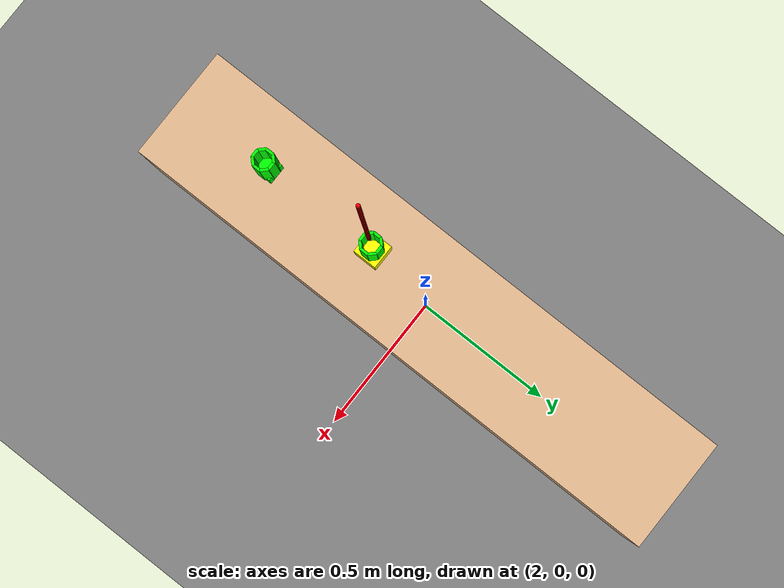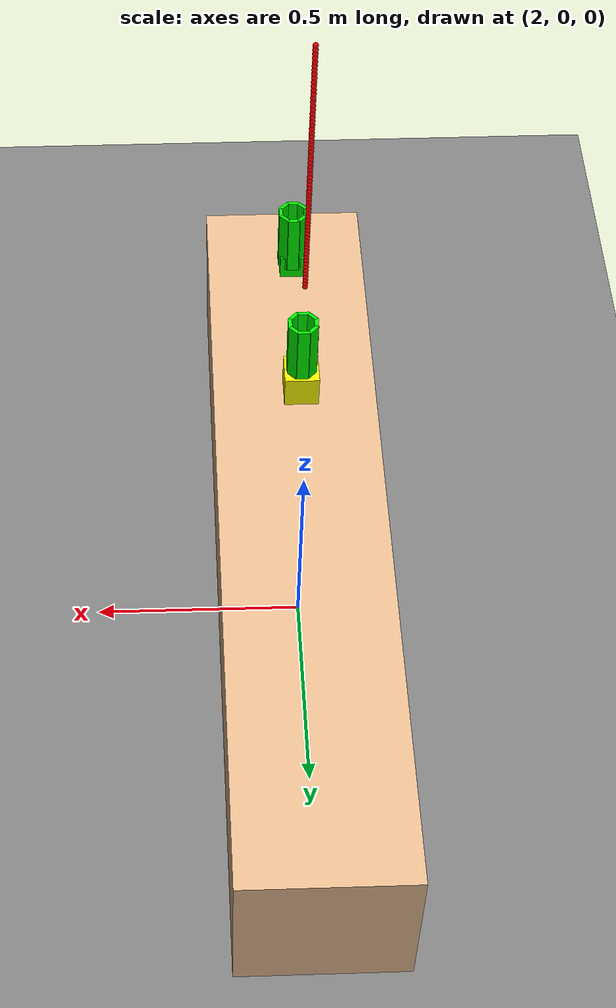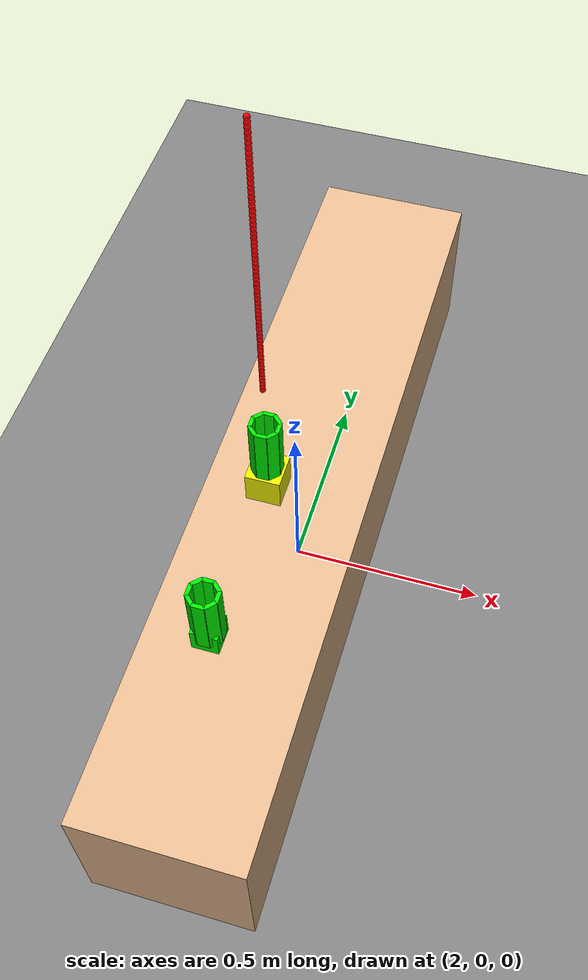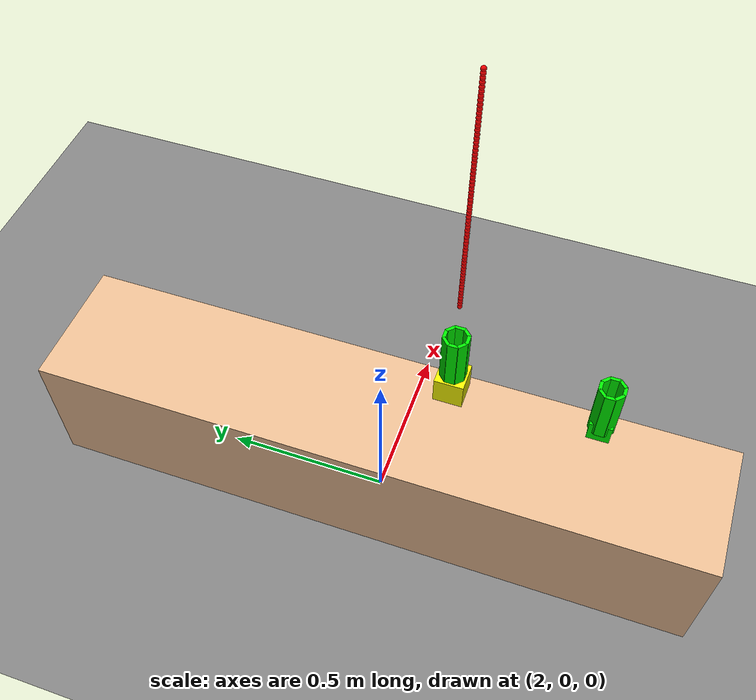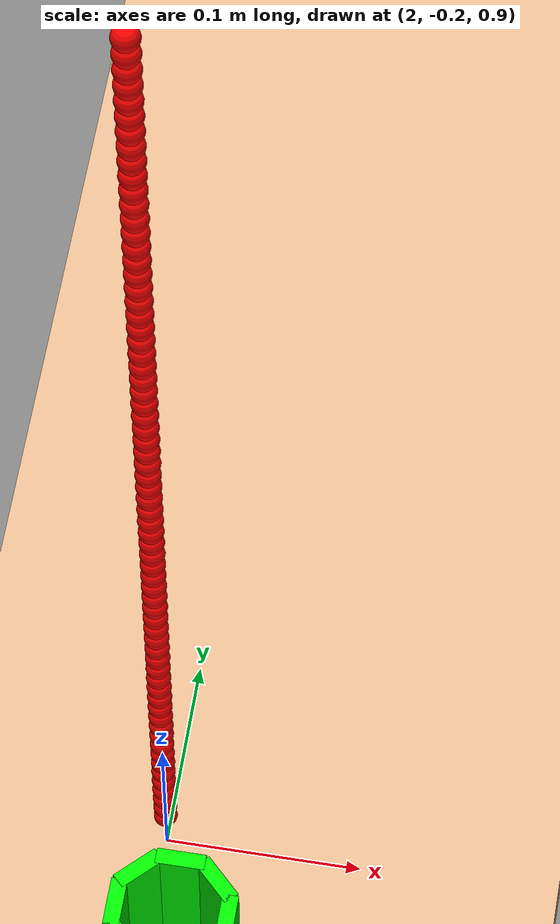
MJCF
<mujoco>
	<compiler angle="radian"/>
	<option timestep="0.002" integrator="RK4" solver="CG" gravity="0 0 -9.81">
		<flag contact="enable" multiccd="enable"/>
	</option>

  <default>
        <geom condim="4" solimp="0.99 0.99 0" solref="0.01 1" friction="1 0.06 0.001"/>
    </default>

	<asset>
    <texture type="skybox" builtin="gradient" rgb1="1 1 1" rgb2=".6 .8 1" width="256" height="256"/>
		<texture name="grid" type="2d" builtin="checker" width="112" height="112" rgb1="0 0 0" rgb2="1 1 1" />
		<material name="grid" texture="grid" texrepeat="1 1" texuniform="true" reflectance=".2" />
	</asset>

	<worldbody>
		<geom name="floor" size="0 0 .05" type="plane" material="grid" condim="3" />
		<light diffuse="1 1 1" pos="0 0 5" dir="0 0 -1" />
		<light diffuse="1 1 1" pos="2 -1 5" dir="0 0 -1" />
		<light diffuse="1 1 1" pos="1 1 5" dir="0 0 -1" />
	</worldbody>

	<worldbody>
		<body name="table" pos="2 0 0.2">
			<geom name="table_geom" type="box" size="0.2 1 0.2" rgba=".89 0.72 .56 1"/>
		</body>

		<body name="src_cup" pos="2 -0.6 0.7">
			<freejoint name="src_cup_joint"/>
			<inertial pos="0.0 0.0 0.0" mass="0.01" diaginertia="0.0008 0.0008 0.00015" />
			<geom type="box" pos="0 0 -0.076" size="0.03 0.03 0.03" rgba="0 1 0 1"/>
			<geom type="box" pos="0.03 0 0" euler="0 0 0" size="0.0044 0.013420519420888278 0.08" rgba="0 1 0 1" />
			<geom type="box" pos="0.021213 0.021213 0" euler="0 0 0.7853981633974483" size="0.0044 0.013420519420888278 0.08" rgba="0 1 0 1" />
			<geom type="box" pos="0 0.03 0" euler="0 0 1.5707963267948966" size="0.0044 0.013420519420888278 0.08" rgba="0 1 0 1" />
			<geom type="box" pos="-0.021213 0.021213 0" euler="0 0 2.356194490192345" size="0.0044 0.013420519420888278 0.08" rgba="0 1 0 1" />
			<geom type="box" pos="-0.03 0 0" euler="0 0 3.141592653589793" size="0.0044 0.013420519420888278 0.08" rgba="0 1 0 1" />
			<geom type="box" pos="-0.021213 -0.021213 0" euler="0 0 -2.356194490192345" size="0.0044 0.013420519420888278 0.08" rgba="0 1 0 1" />
			<geom type="box" pos="0 -0.03 0" euler="0 0 -1.5707963267948966" size="0.0044 0.013420519420888278 0.08" rgba="0 1 0 1" />
			<geom type="box" pos="0.021213 -0.021213 0" euler="0 0 -0.7853981633974483" size="0.0044 0.013420519420888278 0.08" rgba="0 1 0 1" />
		</body>
		<body name="dest_cup" pos="2 -0.2 0.7">
			<freejoint name="dest_cup_joint"/>
     		<inertial pos="0.0 0.0 0.0" mass="0.01" diaginertia="0.0008 0.0008 0.00015" />
			<geom name="bottom_cylinder" type="cylinder" pos="0 0 -0.076" size="0.036 0.032" rgba="0 1 0 1"/>
			<geom type="box" pos="0 0 -0.075" size="0.04 0.04 0.04" rgba="1 1 0 1" group="2" />
			<geom type="box" pos="0.03 0 0.035" euler="0 0 0" size="0.0044 0.013420519420888278 0.08" rgba="0 1 0 1" />
			<geom type="box" pos="0.021213 0.021213 0.035" euler="0 0 0.7853981633974483" size="0.0044 0.013420519420888278 0.08" rgba="0 1 0 1" />
			<geom type="box" pos="0 0.03 0.035" euler="0 0 1.5707963267948966" size="0.0044 0.013420519420888278 0.08" rgba="0 1 0 1" />
			<geom type="box" pos="-0.021213 0.021213 0.035" euler="0 0 2.356194490192345" size="0.0044 0.013420519420888278 0.08" rgba="0 1 0 1" />
			<geom type="box" pos="-0.03 0 0.035" euler="0 0 3.141592653589793" size="0.0044 0.013420519420888278 0.08" rgba="0 1 0 1" />
			<geom type="box" pos="-0.021213 -0.021213 0.035" euler="0 0 -2.356194490192345" size="0.0044 0.013420519420888278 0.08" rgba="0 1 0 1" />
			<geom type="box" pos="0 -0.03 0.035" euler="0 0 -1.5707963267948966" size="0.0044 0.013420519420888278 0.08" rgba="0 1 0 1" />
			<geom type="box" pos="0.021213 -0.021213 0.035" euler="0 0 -0.7853981633974483" size="0.0044 0.013420519420888278 0.08" rgba="0 1 0 1" />
		</body>
	</worldbody>

	<worldbody>

		<body name="sync_ball13" pos="2 -0.2 0.93">
			<freejoint/> <inertial pos="0.0 0.0 0.0" mass="0.0001" diaginertia="0.000000001 0.000000001 0.000000001" />
			<geom type="sphere" size="0.006" rgba="1 0 0 1"/>
		</body>
		<body name="sync_ball14" pos="2 -0.2 0.9400000000000001">
			<freejoint/> <inertial pos="0.0 0.0 0.0" mass="0.0001" diaginertia="0.000000001 0.000000001 0.000000001" />
			<geom type="sphere" size="0.006" rgba="1 0 0 1"/>
		</body>
		<body name="sync_ball15" pos="2 -0.2 0.9500000000000001">
			<freejoint/> <inertial pos="0.0 0.0 0.0" mass="0.0001" diaginertia="0.000000001 0.000000001 0.000000001" />
			<geom type="sphere" size="0.006" rgba="1 0 0 1"/>
		</body>
		<body name="sync_ball16" pos="2 -0.2 0.9600000000000001">
			<freejoint/> <inertial pos="0.0 0.0 0.0" mass="0.0001" diaginertia="0.000000001 0.000000001 0.000000001" />
			<geom type="sphere" size="0.006" rgba="1 0 0 1"/>
		</body>
		<body name="sync_ball17" pos="2 -0.2 0.9700000000000001">
			<freejoint/> <inertial pos="0.0 0.0 0.0" mass="0.0001" diaginertia="0.000000001 0.000000001 0.000000001" />
			<geom type="sphere" size="0.006" rgba="1 0 0 1"/>
		</body>
		<body name="sync_ball18" pos="2 -0.2 0.98">
			<freejoint/> <inertial pos="0.0 0.0 0.0" mass="0.0001" diaginertia="0.000000001 0.000000001 0.000000001" />
			<geom type="sphere" size="0.006" rgba="1 0 0 1"/>
		</body>
		<body name="sync_ball19" pos="2 -0.2 0.99">
			<freejoint/> <inertial pos="0.0 0.0 0.0" mass="0.0001" diaginertia="0.000000001 0.000000001 0.000000001" />
			<geom type="sphere" size="0.006" rgba="1 0 0 1"/>
		</body>
		<body name="sync_ball20" pos="2 -0.2 1.0">
			<freejoint/> <inertial pos="0.0 0.0 0.0" mass="0.0001" diaginertia="0.000000001 0.000000001 0.000000001" />
			<geom type="sphere" size="0.006" rgba="1 0 0 1"/>
		</body>
		<body name="sync_ball21" pos="2 -0.2 1.01">
			<freejoint/> <inertial pos="0.0 0.0 0.0" mass="0.0001" diaginertia="0.000000001 0.000000001 0.000000001" />
			<geom type="sphere" size="0.006" rgba="1 0 0 1"/>
		</body>
		<body name="sync_ball22" pos="2 -0.2 1.02">
			<freejoint/> <inertial pos="0.0 0.0 0.0" mass="0.0001" diaginertia="0.000000001 0.000000001 0.000000001" />
			<geom type="sphere" size="0.006" rgba="1 0 0 1"/>
		</body>
		<body name="sync_ball23" pos="2 -0.2 1.03">
			<freejoint/> <inertial pos="0.0 0.0 0.0" mass="0.0001" diaginertia="0.000000001 0.000000001 0.000000001" />
			<geom type="sphere" size="0.006" rgba="1 0 0 1"/>
		</body>
		<body name="sync_ball24" pos="2 -0.2 1.04">
			<freejoint/> <inertial pos="0.0 0.0 0.0" mass="0.0001" diaginertia="0.000000001 0.000000001 0.000000001" />
			<geom type="sphere" size="0.006" rgba="1 0 0 1"/>
		</body>
		<body name="sync_ball25" pos="2 -0.2 1.05">
			<freejoint/> <inertial pos="0.0 0.0 0.0" mass="0.0001" diaginertia="0.000000001 0.000000001 0.000000001" />
			<geom type="sphere" size="0.006" rgba="1 0 0 1"/>
		</body>
		<body name="sync_ball26" pos="2 -0.2 1.06">
			<freejoint/> <inertial pos="0.0 0.0 0.0" mass="0.0001" diaginertia="0.000000001 0.000000001 0.000000001" />
			<geom type="sphere" size="0.006" rgba="1 0 0 1"/>
		</body>
		<body name="sync_ball27" pos="2 -0.2 1.07">
			<freejoint/> <inertial pos="0.0 0.0 0.0" mass="0.0001" diaginertia="0.000000001 0.000000001 0.000000001" />
			<geom type="sphere" size="0.006" rgba="1 0 0 1"/>
		</body>
		<body name="sync_ball28" pos="2 -0.2 1.08">
			<freejoint/> <inertial pos="0.0 0.0 0.0" mass="0.0001" diaginertia="0.000000001 0.000000001 0.000000001" />
			<geom type="sphere" size="0.006" rgba="1 0 0 1"/>
		</body>
		<body name="sync_ball29" pos="2 -0.2 1.09">
			<freejoint/> <inertial pos="0.0 0.0 0.0" mass="0.0001" diaginertia="0.000000001 0.000000001 0.000000001" />
			<geom type="sphere" size="0.006" rgba="1 0 0 1"/>
		</body>
		<body name="sync_ball30" pos="2 -0.2 1.1">
			<freejoint/> <inertial pos="0.0 0.0 0.0" mass="0.0001" diaginertia="0.000000001 0.000000001 0.000000001" />
			<geom type="sphere" size="0.006" rgba="1 0 0 1"/>
		</body>
		<body name="sync_ball31" pos="2 -0.2 1.11">
			<freejoint/> <inertial pos="0.0 0.0 0.0" mass="0.0001" diaginertia="0.000000001 0.000000001 0.000000001" />
			<geom type="sphere" size="0.006" rgba="1 0 0 1"/>
		</body>
		<body name="sync_ball32" pos="2 -0.2 1.12">
			<freejoint/> <inertial pos="0.0 0.0 0.0" mass="0.0001" diaginertia="0.000000001 0.000000001 0.000000001" />
			<geom type="sphere" size="0.006" rgba="1 0 0 1"/>
		</body>
		<body name="sync_ball33" pos="2 -0.2 1.1300000000000001">
			<freejoint/> <inertial pos="0.0 0.0 0.0" mass="0.0001" diaginertia="0.000000001 0.000000001 0.000000001" />
			<geom type="sphere" size="0.006" rgba="1 0 0 1"/>
		</body>
		<body name="sync_ball34" pos="2 -0.2 1.1400000000000001">
			<freejoint/> <inertial pos="0.0 0.0 0.0" mass="0.0001" diaginertia="0.000000001 0.000000001 0.000000001" />
			<geom type="sphere" size="0.006" rgba="1 0 0 1"/>
		</body>
		<body name="sync_ball35" pos="2 -0.2 1.1500000000000001">
			<freejoint/> <inertial pos="0.0 0.0 0.0" mass="0.0001" diaginertia="0.000000001 0.000000001 0.000000001" />
			<geom type="sphere" size="0.006" rgba="1 0 0 1"/>
		</body>
		<body name="sync_ball36" pos="2 -0.2 1.1600000000000001">
			<freejoint/> <inertial pos="0.0 0.0 0.0" mass="0.0001" diaginertia="0.000000001 0.000000001 0.000000001" />
			<geom type="sphere" size="0.006" rgba="1 0 0 1"/>
		</body>
		<body name="sync_ball37" pos="2 -0.2 1.17">
			<freejoint/> <inertial pos="0.0 0.0 0.0" mass="0.0001" diaginertia="0.000000001 0.000000001 0.000000001" />
			<geom type="sphere" size="0.006" rgba="1 0 0 1"/>
		</body>
		<body name="sync_ball38" pos="2 -0.2 1.1800000000000002">
			<freejoint/> <inertial pos="0.0 0.0 0.0" mass="0.0001" diaginertia="0.000000001 0.000000001 0.000000001" />
			<geom type="sphere" size="0.006" rgba="1 0 0 1"/>
		</body>
		<body name="sync_ball39" pos="2 -0.2 1.19">
			<freejoint/> <inertial pos="0.0 0.0 0.0" mass="0.0001" diaginertia="0.000000001 0.000000001 0.000000001" />
			<geom type="sphere" size="0.006" rgba="1 0 0 1"/>
		</body>
		<body name="sync_ball40" pos="2 -0.2 1.2000000000000002">
			<freejoint/> <inertial pos="0.0 0.0 0.0" mass="0.0001" diaginertia="0.000000001 0.000000001 0.000000001" />
			<geom type="sphere" size="0.006" rgba="1 0 0 1"/>
		</body>
		<body name="sync_ball41" pos="2 -0.2 1.21">
			<freejoint/> <inertial pos="0.0 0.0 0.0" mass="0.0001" diaginertia="0.000000001 0.000000001 0.000000001" />
			<geom type="sphere" size="0.006" rgba="1 0 0 1"/>
		</body>
		<body name="sync_ball42" pos="2 -0.2 1.22">
			<freejoint/> <inertial pos="0.0 0.0 0.0" mass="0.0001" diaginertia="0.000000001 0.000000001 0.000000001" />
			<geom type="sphere" size="0.006" rgba="1 0 0 1"/>
		</body>
		<body name="sync_ball43" pos="2 -0.2 1.23">
			<freejoint/> <inertial pos="0.0 0.0 0.0" mass="0.0001" diaginertia="0.000000001 0.000000001 0.000000001" />
			<geom type="sphere" size="0.006" rgba="1 0 0 1"/>
		</body>
		<body name="sync_ball44" pos="2 -0.2 1.24">
			<freejoint/> <inertial pos="0.0 0.0 0.0" mass="0.0001" diaginertia="0.000000001 0.000000001 0.000000001" />
			<geom type="sphere" size="0.006" rgba="1 0 0 1"/>
		</body>
		<body name="sync_ball45" pos="2 -0.2 1.25">
			<freejoint/> <inertial pos="0.0 0.0 0.0" mass="0.0001" diaginertia="0.000000001 0.000000001 0.000000001" />
			<geom type="sphere" size="0.006" rgba="1 0 0 1"/>
		</body>
		<body name="sync_ball46" pos="2 -0.2 1.26">
			<freejoint/> <inertial pos="0.0 0.0 0.0" mass="0.0001" diaginertia="0.000000001 0.000000001 0.000000001" />
			<geom type="sphere" size="0.006" rgba="1 0 0 1"/>
		</body>
		<body name="sync_ball47" pos="2 -0.2 1.27">
			<freejoint/> <inertial pos="0.0 0.0 0.0" mass="0.0001" diaginertia="0.000000001 0.000000001 0.000000001" />
			<geom type="sphere" size="0.006" rgba="1 0 0 1"/>
		</body>
		<body name="sync_ball48" pos="2 -0.2 1.28">
			<freejoint/> <inertial pos="0.0 0.0 0.0" mass="0.0001" diaginertia="0.000000001 0.000000001 0.000000001" />
			<geom type="sphere" size="0.006" rgba="1 0 0 1"/>
		</body>
		<body name="sync_ball49" pos="2 -0.2 1.29">
			<freejoint/> <inertial pos="0.0 0.0 0.0" mass="0.0001" diaginertia="0.000000001 0.000000001 0.000000001" />
			<geom type="sphere" size="0.006" rgba="1 0 0 1"/>
		</body>
		<body name="sync_ball50" pos="2 -0.2 1.3">
			<freejoint/> <inertial pos="0.0 0.0 0.0" mass="0.0001" diaginertia="0.000000001 0.000000001 0.000000001" />
			<geom type="sphere" size="0.006" rgba="1 0 0 1"/>
		</body>
		<body name="sync_ball51" pos="2 -0.2 1.31">
			<freejoint/> <inertial pos="0.0 0.0 0.0" mass="0.0001" diaginertia="0.000000001 0.000000001 0.000000001" />
			<geom type="sphere" size="0.006" rgba="1 0 0 1"/>
		</body>
		<body name="sync_ball52" pos="2 -0.2 1.32">
			<freejoint/> <inertial pos="0.0 0.0 0.0" mass="0.0001" diaginertia="0.000000001 0.000000001 0.000000001" />
			<geom type="sphere" size="0.006" rgba="1 0 0 1"/>
		</body>
		<body name="sync_ball53" pos="2 -0.2 1.33">
			<freejoint/> <inertial pos="0.0 0.0 0.0" mass="0.0001" diaginertia="0.000000001 0.000000001 0.000000001" />
			<geom type="sphere" size="0.006" rgba="1 0 0 1"/>
		</body>
		<body name="sync_ball54" pos="2 -0.2 1.34">
			<freejoint/> <inertial pos="0.0 0.0 0.0" mass="0.0001" diaginertia="0.000000001 0.000000001 0.000000001" />
			<geom type="sphere" size="0.006" rgba="1 0 0 1"/>
		</body>
		<body name="sync_ball55" pos="2 -0.2 1.35">
			<freejoint/> <inertial pos="0.0 0.0 0.0" mass="0.0001" diaginertia="0.000000001 0.000000001 0.000000001" />
			<geom type="sphere" size="0.006" rgba="1 0 0 1"/>
		</body>
		<body name="sync_ball56" pos="2 -0.2 1.36">
			<freejoint/> <inertial pos="0.0 0.0 0.0" mass="0.0001" diaginertia="0.000000001 0.000000001 0.000000001" />
			<geom type="sphere" size="0.006" rgba="1 0 0 1"/>
		</body>
		<body name="sync_ball57" pos="2 -0.2 1.37">
			<freejoint/> <inertial pos="0.0 0.0 0.0" mass="0.0001" diaginertia="0.000000001 0.000000001 0.000000001" />
			<geom type="sphere" size="0.006" rgba="1 0 0 1"/>
		</body>
		<body name="sync_ball58" pos="2 -0.2 1.38">
			<freejoint/> <inertial pos="0.0 0.0 0.0" mass="0.0001" diaginertia="0.000000001 0.000000001 0.000000001" />
			<geom type="sphere" size="0.006" rgba="1 0 0 1"/>
		</body>
		<body name="sync_ball59" pos="2 -0.2 1.3900000000000001">
			<freejoint/> <inertial pos="0.0 0.0 0.0" mass="0.0001" diaginertia="0.000000001 0.000000001 0.000000001" />
			<geom type="sphere" size="0.006" rgba="1 0 0 1"/>
		</body>
		<body name="sync_ball60" pos="2 -0.2 1.4">
			<freejoint/> <inertial pos="0.0 0.0 0.0" mass="0.0001" diaginertia="0.000000001 0.000000001 0.000000001" />
			<geom type="sphere" size="0.006" rgba="1 0 0 1"/>
		</body>
		<body name="sync_ball61" pos="2 -0.2 1.4100000000000001">
			<freejoint/> <inertial pos="0.0 0.0 0.0" mass="0.0001" diaginertia="0.000000001 0.000000001 0.000000001" />
			<geom type="sphere" size="0.006" rgba="1 0 0 1"/>
		</body>
		<body name="sync_ball62" pos="2 -0.2 1.42">
			<freejoint/> <inertial pos="0.0 0.0 0.0" mass="0.0001" diaginertia="0.000000001 0.000000001 0.000000001" />
			<geom type="sphere" size="0.006" rgba="1 0 0 1"/>
		</body>
		<body name="sync_ball63" pos="2 -0.2 1.4300000000000002">
			<freejoint/> <inertial pos="0.0 0.0 0.0" mass="0.0001" diaginertia="0.000000001 0.000000001 0.000000001" />
			<geom type="sphere" size="0.006" rgba="1 0 0 1"/>
		</body>
		<body name="sync_ball64" pos="2 -0.2 1.44">
			<freejoint/> <inertial pos="0.0 0.0 0.0" mass="0.0001" diaginertia="0.000000001 0.000000001 0.000000001" />
			<geom type="sphere" size="0.006" rgba="1 0 0 1"/>
		</body>
		<body name="sync_ball65" pos="2 -0.2 1.4500000000000002">
			<freejoint/> <inertial pos="0.0 0.0 0.0" mass="0.0001" diaginertia="0.000000001 0.000000001 0.000000001" />
			<geom type="sphere" size="0.006" rgba="1 0 0 1"/>
		</body>
		<body name="sync_ball66" pos="2 -0.2 1.46">
			<freejoint/> <inertial pos="0.0 0.0 0.0" mass="0.0001" diaginertia="0.000000001 0.000000001 0.000000001" />
			<geom type="sphere" size="0.006" rgba="1 0 0 1"/>
		</body>
		<body name="sync_ball67" pos="2 -0.2 1.4700000000000002">
			<freejoint/> <inertial pos="0.0 0.0 0.0" mass="0.0001" diaginertia="0.000000001 0.000000001 0.000000001" />
			<geom type="sphere" size="0.006" rgba="1 0 0 1"/>
		</body>
		<body name="sync_ball68" pos="2 -0.2 1.48">
			<freejoint/> <inertial pos="0.0 0.0 0.0" mass="0.0001" diaginertia="0.000000001 0.000000001 0.000000001" />
			<geom type="sphere" size="0.006" rgba="1 0 0 1"/>
		</body>
		<body name="sync_ball69" pos="2 -0.2 1.4900000000000002">
			<freejoint/> <inertial pos="0.0 0.0 0.0" mass="0.0001" diaginertia="0.000000001 0.000000001 0.000000001" />
			<geom type="sphere" size="0.006" rgba="1 0 0 1"/>
		</body>
		<body name="sync_ball70" pos="2 -0.2 1.5">
			<freejoint/> <inertial pos="0.0 0.0 0.0" mass="0.0001" diaginertia="0.000000001 0.000000001 0.000000001" />
			<geom type="sphere" size="0.006" rgba="1 0 0 1"/>
		</body>
		<body name="sync_ball71" pos="2 -0.2 1.51">
			<freejoint/> <inertial pos="0.0 0.0 0.0" mass="0.0001" diaginertia="0.000000001 0.000000001 0.000000001" />
			<geom type="sphere" size="0.006" rgba="1 0 0 1"/>
		</body>
		<body name="sync_ball72" pos="2 -0.2 1.52">
			<freejoint/> <inertial pos="0.0 0.0 0.0" mass="0.0001" diaginertia="0.000000001 0.000000001 0.000000001" />
			<geom type="sphere" size="0.006" rgba="1 0 0 1"/>
		</body>
		<body name="sync_ball73" pos="2 -0.2 1.53">
			<freejoint/> <inertial pos="0.0 0.0 0.0" mass="0.0001" diaginertia="0.000000001 0.000000001 0.000000001" />
			<geom type="sphere" size="0.006" rgba="1 0 0 1"/>
		</body>
		<body name="sync_ball74" pos="2 -0.2 1.54">
			<freejoint/> <inertial pos="0.0 0.0 0.0" mass="0.0001" diaginertia="0.000000001 0.000000001 0.000000001" />
			<geom type="sphere" size="0.006" rgba="1 0 0 1"/>
		</body>
		<body name="sync_ball75" pos="2 -0.2 1.55">
			<freejoint/> <inertial pos="0.0 0.0 0.0" mass="0.0001" diaginertia="0.000000001 0.000000001 0.000000001" />
			<geom type="sphere" size="0.006" rgba="1 0 0 1"/>
		</body>
		<body name="sync_ball76" pos="2 -0.2 1.56">
			<freejoint/> <inertial pos="0.0 0.0 0.0" mass="0.0001" diaginertia="0.000000001 0.000000001 0.000000001" />
			<geom type="sphere" size="0.006" rgba="1 0 0 1"/>
		</body>
		<body name="sync_ball77" pos="2 -0.2 1.57">
			<freejoint/> <inertial pos="0.0 0.0 0.0" mass="0.0001" diaginertia="0.000000001 0.000000001 0.000000001" />
			<geom type="sphere" size="0.006" rgba="1 0 0 1"/>
		</body>
		<body name="sync_ball78" pos="2 -0.2 1.58">
			<freejoint/> <inertial pos="0.0 0.0 0.0" mass="0.0001" diaginertia="0.000000001 0.000000001 0.000000001" />
			<geom type="sphere" size="0.006" rgba="1 0 0 1"/>
		</body>
		<body name="sync_ball79" pos="2 -0.2 1.59">
			<freejoint/> <inertial pos="0.0 0.0 0.0" mass="0.0001" diaginertia="0.000000001 0.000000001 0.000000001" />
			<geom type="sphere" size="0.006" rgba="1 0 0 1"/>
		</body>

	</worldbody>

</mujoco>
